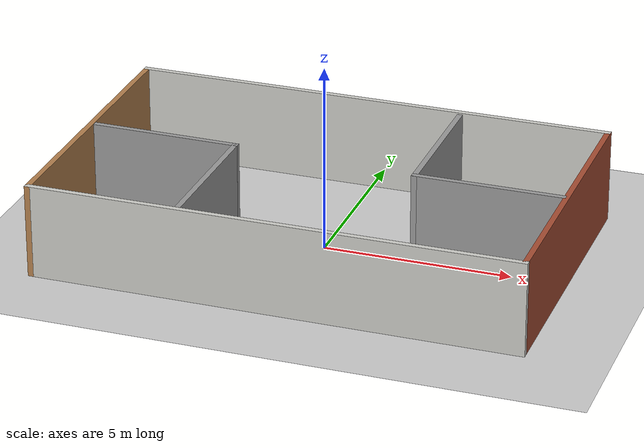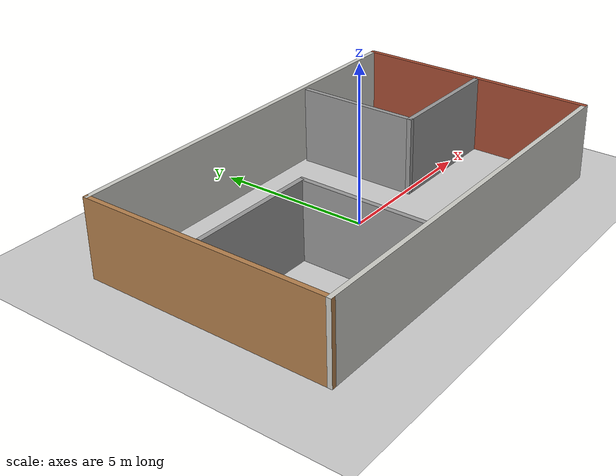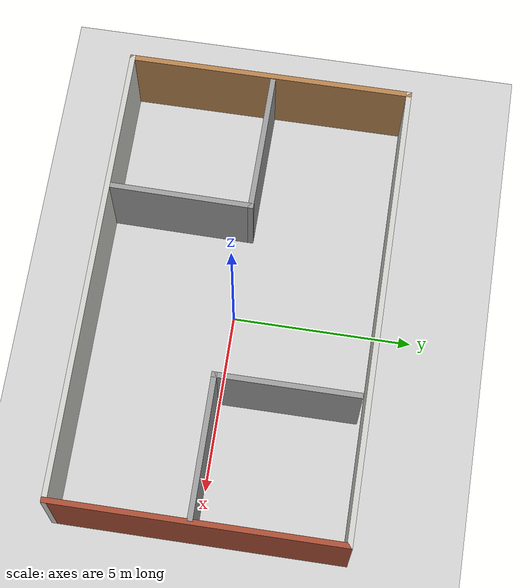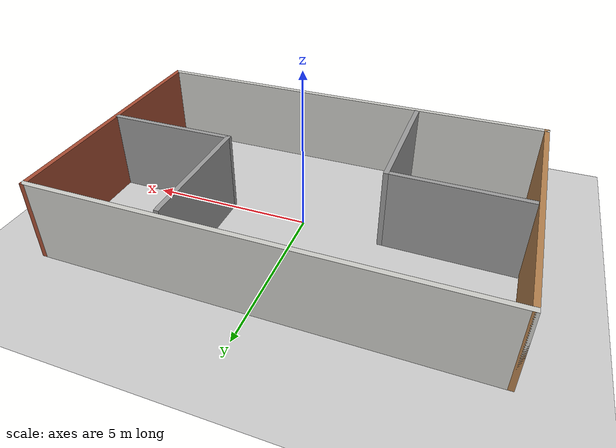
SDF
<sdf version="1.7">
 <world name="default">
  <light name="sun" type="directional">
   <pose>0 0 10 0 -0 0</pose>
   <diffuse>0.8 0.8 0.8 1</diffuse>
   <specular>0.2 0.2 0.2 1</specular>
   <attenuation>
    <range>1000</range>
    <constant>0.9</constant>
    <linear>0.01</linear>
    <quadratic>0.001</quadratic>
   </attenuation>
   <direction>-0.5 0.1 -0.9</direction>
   <spot><inner_angle>0</inner_angle><outer_angle>0</outer_angle><falloff>0</falloff></spot>
  </light>
  <model name="ground_plane">
   <static>1</static>
   <link name="link">
    <collision name="collision">
     <geometry><plane><normal>0 0 1</normal><size>100 100</size></plane></geometry>
     <surface>
      <contact><collide_bitmask>65535</collide_bitmask></contact>
      <friction><ode><mu>100</mu><mu2>50</mu2></ode></friction>
     </surface>
    </collision>
    <visual name="visual">
     <cast_shadows>0</cast_shadows>
     <geometry><plane><normal>0 0 1</normal><size>100 100</size></plane></geometry>
     <material>
      <script><uri>file://media/materials/scripts/gazebo.material</uri><name>Gazebo/Grey</name></script>
     </material>
    </visual>
   </link>
  </model>
  <gravity>0 0 -9.8</gravity>
  <magnetic_field>6e-06 2.3e-05 -4.2e-05</magnetic_field>
  <atmosphere type="adiabatic"/>
  <physics type="ode">
   <max_step_size>0.001</max_step_size>
   <real_time_factor>1</real_time_factor>
   <real_time_update_rate>1000</real_time_update_rate>
  </physics>
  <scene><ambient>0.4 0.4 0.4 1</ambient><background>0.7 0.7 0.7 1</background><shadows>1</shadows></scene>
  <spherical_coordinates>
   <surface_model>EARTH_WGS84</surface_model>
   <latitude_deg>0</latitude_deg>
   <longitude_deg>0</longitude_deg>
   <elevation>0</elevation>
   <heading_deg>0</heading_deg>
  </spherical_coordinates>
  <model name="box_house">
   <pose>-0.041548 0.05996 0 0 -0 0</pose>
   <link name="Wall_1">
    <collision name="Wall_1_Collision">
     <geometry><box><size>13 0.15 2.5</size></box></geometry>
     <pose>0 0 1.25 0 -0 0</pose>
    </collision>
    <visual name="Wall_1_Visual">
     <pose>0 0 1.25 0 -0 0</pose>
     <geometry><box><size>13 0.15 2.5</size></box></geometry>
     <material>
      <script><uri>file://media/materials/scripts/gazebo.material</uri><name>Gazebo/CeilingTiled</name></script>
      <ambient>1 1 1 1</ambient>
     </material>
     <meta><layer>0</layer></meta>
    </visual>
    <pose>0 3.925 0 0 -0 0</pose>
   </link>
   <link name="Wall_2">
    <collision name="Wall_2_Collision">
     <geometry><box><size>8 0.15 2.5</size></box></geometry>
     <pose>0 0 1.25 0 -0 0</pose>
    </collision>
    <visual name="Wall_2_Visual">
     <pose>0 0 1.25 0 -0 0</pose>
     <geometry><box><size>8 0.15 2.5</size></box></geometry>
     <material>
      <script><uri>file://media/materials/scripts/gazebo.material</uri><name>Gazebo/Bricks</name></script>
      <ambient>1 1 1 1</ambient>
     </material>
     <meta><layer>0</layer></meta>
    </visual>
    <pose>6.425 -0 0 0 -0 -1.5708</pose>
   </link>
   <link name="Wall_3">
    <collision name="Wall_3_Collision">
     <geometry><box><size>13 0.15 2.5</size></box></geometry>
     <pose>0 0 1.25 0 -0 0</pose>
    </collision>
    <visual name="Wall_3_Visual">
     <pose>0 0 1.25 0 -0 0</pose>
     <geometry><box><size>13 0.15 2.5</size></box></geometry>
     <material>
      <script><uri>file://media/materials/scripts/gazebo.material</uri><name>Gazebo/CeilingTiled</name></script>
      <ambient>1 1 1 1</ambient>
     </material>
     <meta><layer>0</layer></meta>
    </visual>
    <pose>0 -3.925 0 0 -0 3.14159</pose>
   </link>
   <link name="Wall_4">
    <collision name="Wall_4_Collision">
     <geometry><box><size>8 0.15 2.5</size></box></geometry>
     <pose>0 0 1.25 0 -0 0</pose>
    </collision>
    <visual name="Wall_4_Visual">
     <pose>0 0 1.25 0 -0 0</pose>
     <geometry><box><size>8 0.15 2.5</size></box></geometry>
     <material>
      <script><uri>file://media/materials/scripts/gazebo.material</uri><name>Gazebo/Wood</name></script>
      <ambient>1 1 1 1</ambient>
     </material>
     <meta><layer>0</layer></meta>
    </visual>
    <pose>-6.425 -0 0 0 -0 1.5708</pose>
   </link>
   <static>1</static>
  </model>
  <model name="wall_right_angle">
   <pose>4.36518 1.81886 0 0 -0 0</pose>
   <link name="Wall_0">
    <collision name="Wall_0_Collision">
     <geometry><box><size>4 0.15 2.5</size></box></geometry>
     <pose>0 0 1.25 0 -0 0</pose>
    </collision>
    <visual name="Wall_0_Visual">
     <pose>0 0 1.25 0 -0 0</pose>
     <geometry><box><size>4 0.15 2.5</size></box></geometry>
     <material>
      <script><uri>file://media/materials/scripts/gazebo.material</uri><name>Gazebo/Grey</name></script>
      <ambient>1 1 1 1</ambient>
     </material>
     <meta><layer>0</layer></meta>
    </visual>
    <pose>0 -1.925 0 0 -0 3.14159</pose>
   </link>
   <link name="Wall_3">
    <collision name="Wall_3_Collision">
     <geometry><box><size>4 0.15 2.5</size></box></geometry>
     <pose>0 0 1.25 0 -0 0</pose>
    </collision>
    <visual name="Wall_3_Visual">
     <pose>0 0 1.25 0 -0 0</pose>
     <geometry><box><size>4 0.15 2.5</size></box></geometry>
     <material>
      <script><uri>file://media/materials/scripts/gazebo.material</uri><name>Gazebo/Grey</name></script>
      <ambient>1 1 1 1</ambient>
     </material>
     <meta><layer>0</layer></meta>
    </visual>
    <pose>-1.925 -0 0 0 -0 1.5708</pose>
   </link>
   <static>1</static>
  </model>
  <model name="wall_right_angle_clone">
   <pose>-4.39873 -1.78778 0 0 -0 3.13129</pose>
   <link name="Wall_0">
    <collision name="Wall_0_Collision">
     <geometry><box><size>4 0.15 2.5</size></box></geometry>
     <pose>0 0 1.25 0 -0 0</pose>
    </collision>
    <visual name="Wall_0_Visual">
     <pose>0 0 1.25 0 -0 0</pose>
     <geometry><box><size>4 0.15 2.5</size></box></geometry>
     <material>
      <script><uri>file://media/materials/scripts/gazebo.material</uri><name>Gazebo/Grey</name></script>
      <ambient>1 1 1 1</ambient>
     </material>
     <meta><layer>0</layer></meta>
    </visual>
    <pose>0 -1.925 0 0 -0 3.14159</pose>
   </link>
   <link name="Wall_3">
    <collision name="Wall_3_Collision">
     <geometry><box><size>4 0.15 2.5</size></box></geometry>
     <pose>0 0 1.25 0 -0 0</pose>
    </collision>
    <visual name="Wall_3_Visual">
     <pose>0 0 1.25 0 -0 0</pose>
     <geometry><box><size>4 0.15 2.5</size></box></geometry>
     <material>
      <script><uri>file://media/materials/scripts/gazebo.material</uri><name>Gazebo/Grey</name></script>
      <ambient>1 1 1 1</ambient>
     </material>
     <meta><layer>0</layer></meta>
    </visual>
    <pose>-1.925 -0 0 0 -0 1.5708</pose>
   </link>
   <static>1</static>
  </model>
 </world>
</sdf>
